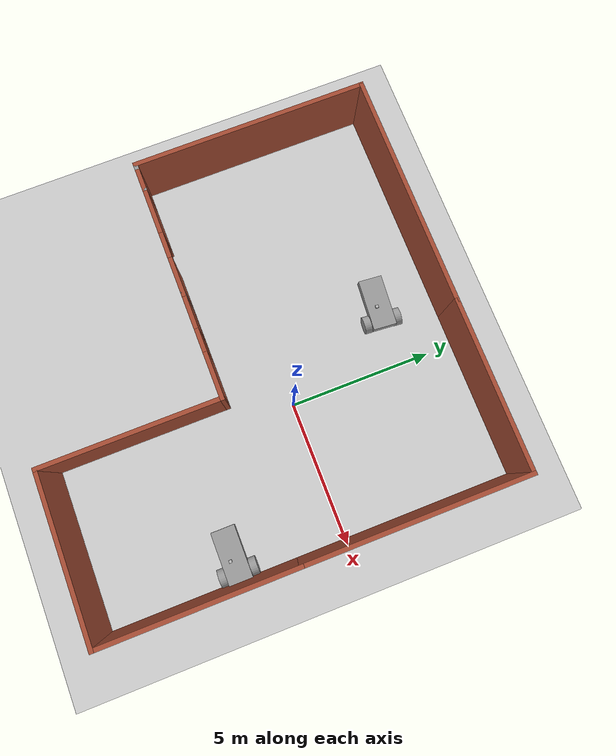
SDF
<sdf version="1.6">
 <world name="default">
  <light name="sun" type="directional">
   <pose>0 0 10 0 -0 0</pose>
   <diffuse>0.8 0.8 0.8 1</diffuse>
   <specular>0.2 0.2 0.2 1</specular>
   <attenuation>
    <range>1000</range>
    <constant>0.9</constant>
    <linear>0.01</linear>
    <quadratic>0.001</quadratic>
   </attenuation>
   <direction>-0.5 0.1 -0.9</direction>
  </light>
  <model name="ground_plane">
   <static>1</static>
   <link name="link">
    <collision name="collision">
     <geometry><plane><normal>0 0 1</normal><size>100 100</size></plane></geometry>
     <surface>
      <contact><collide_bitmask>65535</collide_bitmask></contact>
      <friction><ode><mu>100</mu><mu2>50</mu2></ode></friction>
     </surface>
    </collision>
    <visual name="visual">
     <cast_shadows>0</cast_shadows>
     <geometry><plane><normal>0 0 1</normal><size>100 100</size></plane></geometry>
     <material>
      <script><uri>file://media/materials/scripts/gazebo.material</uri><name>Gazebo/Grey</name></script>
     </material>
    </visual>
   </link>
  </model>
  <gravity>0 0 -9.8</gravity>
  <magnetic_field>6e-06 2.3e-05 -4.2e-05</magnetic_field>
  <atmosphere type="adiabatic"/>
  <physics name="default_physics" default="0" type="ode">
   <max_step_size>0.001</max_step_size>
   <real_time_factor>1</real_time_factor>
   <real_time_update_rate>1000</real_time_update_rate>
  </physics>
  <scene><ambient>0.4 0.4 0.4 1</ambient><background>0.7 0.7 0.7 1</background><shadows>1</shadows></scene>
  <audio><device>default</device></audio>
  <spherical_coordinates>
   <surface_model>EARTH_WGS84</surface_model>
   <latitude_deg>0</latitude_deg>
   <longitude_deg>0</longitude_deg>
   <elevation>0</elevation>
   <heading_deg>0</heading_deg>
  </spherical_coordinates>
  <model name="firstdemo">
   <pose>-2.129 -1.13538 0 0 -0 0</pose>
   <link name="Wall_14">
    <collision name="Wall_14_Collision">
     <geometry><box><size>8.25 0.15 2.5</size></box></geometry>
     <pose>0 0 1.25 0 -0 0</pose>
    </collision>
    <visual name="Wall_14_Visual">
     <pose>0 0 1.25 0 -0 0</pose>
     <geometry><box><size>8.25 0.15 2.5</size></box></geometry>
     <material>
      <script><uri>file://media/materials/scripts/gazebo.material</uri><name>Gazebo/Bricks</name></script>
      <ambient>0.996078 0.47451 0.0196078 1</ambient>
     </material>
     <meta><layer>0</layer></meta>
    </visual>
    <pose>-2.92516 7.11317 0 0 -0 0</pose>
   </link>
   <link name="Wall_15">
    <collision name="Wall_15_Collision">
     <geometry><box><size>6 0.15 2.5</size></box></geometry>
     <pose>0 0 1.25 0 -0 0</pose>
    </collision>
    <visual name="Wall_15_Visual">
     <pose>0 0 1.25 0 -0 0</pose>
     <geometry><box><size>6 0.15 2.5</size></box></geometry>
     <material>
      <script><uri>file://media/materials/scripts/gazebo.material</uri><name>Gazebo/Bricks</name></script>
      <ambient>0.996078 0.47451 0.0196078 1</ambient>
     </material>
     <meta><layer>0</layer></meta>
    </visual>
    <pose>4.04984 7.11317 0 0 -0 0</pose>
   </link>
   <link name="Wall_16">
    <collision name="Wall_16_Collision">
     <geometry><box><size>7.776 0.15 2.5</size></box></geometry>
     <pose>0 0 1.25 0 -0 0</pose>
    </collision>
    <visual name="Wall_16_Visual">
     <pose>0 0 1.25 0 -0 0</pose>
     <geometry><box><size>7.776 0.15 2.5</size></box></geometry>
     <material>
      <script><uri>file://media/materials/scripts/gazebo.material</uri><name>Gazebo/Bricks</name></script>
      <ambient>0.996078 0.47451 0.0196078 1</ambient>
     </material>
     <meta><layer>0</layer></meta>
    </visual>
    <pose>6.97484 3.30017 0 0 -0 -1.5708</pose>
   </link>
   <link name="Wall_17">
    <collision name="Wall_17_Collision">
     <geometry><box><size>6.75006 0.15 2.5</size></box></geometry>
     <pose>0 0 1.25 0 -0 0</pose>
    </collision>
    <visual name="Wall_17_Visual">
     <pose>0 0 1.25 0 -0 0</pose>
     <geometry><box><size>6.75006 0.15 2.5</size></box></geometry>
     <material>
      <script><uri>file://media/materials/scripts/gazebo.material</uri><name>Gazebo/Bricks</name></script>
      <ambient>0.996078 0.47451 0.0196078 1</ambient>
     </material>
     <meta><layer>0</layer></meta>
    </visual>
    <pose>6.97484 -3.81283 0 0 -0 -1.5708</pose>
   </link>
   <link name="Wall_18">
    <collision name="Wall_18_Collision">
     <geometry><box><size>5.75 0.15 2.5</size></box></geometry>
     <pose>0 0 1.25 0 -0 0</pose>
    </collision>
    <visual name="Wall_18_Visual">
     <pose>0 0 1.25 0 -0 0</pose>
     <geometry><box><size>5.75 0.15 2.5</size></box></geometry>
     <material>
      <script><uri>file://media/materials/scripts/gazebo.material</uri><name>Gazebo/Bricks</name></script>
      <ambient>0.996078 0.47451 0.0196078 1</ambient>
     </material>
     <meta><layer>0</layer></meta>
    </visual>
    <pose>4.17484 -7.09983 0 0 -0 3.13695</pose>
   </link>
   <link name="Wall_19">
    <collision name="Wall_19_Collision">
     <geometry><box><size>6.25 0.15 2.5</size></box></geometry>
     <pose>0 0 1.25 0 -0 0</pose>
    </collision>
    <visual name="Wall_19_Visual">
     <pose>0 0 1.25 0 -0 0</pose>
     <geometry><box><size>6.25 0.15 2.5</size></box></geometry>
     <material>
      <script><uri>file://media/materials/scripts/gazebo.material</uri><name>Gazebo/Bricks</name></script>
      <ambient>0.996078 0.47451 0.0196078 1</ambient>
     </material>
     <meta><layer>0</layer></meta>
    </visual>
    <pose>1.37484 -4.03683 0 0 -0 1.5708</pose>
   </link>
   <link name="Wall_20">
    <pose>-0.425158 -0.986827 0 0 -0 3.14159</pose>
    <visual name="Wall_20_Visual_0">
     <pose>-1.04992 0 1.25 0 -0 0</pose>
     <geometry><box><size>1.65016 0.15 2.5</size></box></geometry>
     <material>
      <script><uri>file://media/materials/scripts/gazebo.material</uri><name>Gazebo/Bricks</name></script>
      <ambient>0.996078 0.47451 0.0196078 1</ambient>
     </material>
     <meta><layer>0</layer></meta>
    </visual>
    <collision name="Wall_20_Collision_0">
     <geometry><box><size>1.65016 0.15 2.5</size></box></geometry>
     <pose>-1.04992 0 1.25 0 -0 0</pose>
    </collision>
    <visual name="Wall_20_Visual_1">
     <pose>0.825082 0 0.25 0 -0 0</pose>
     <geometry><box><size>2.09984 0.15 0.5</size></box></geometry>
     <material>
      <script><uri>file://media/materials/scripts/gazebo.material</uri><name>Gazebo/Bricks</name></script>
      <ambient>0.996078 0.47451 0.0196078 1</ambient>
     </material>
     <meta><layer>0</layer></meta>
    </visual>
    <collision name="Wall_20_Collision_1">
     <geometry><box><size>2.09984 0.15 0.5</size></box></geometry>
     <pose>0.825082 0 0.25 0 -0 0</pose>
    </collision>
    <visual name="Wall_20_Visual_2">
     <pose>1.22508 0 1.5 0 -0 0</pose>
     <geometry><box><size>1.29984 0.15 2</size></box></geometry>
     <material>
      <script><uri>file://media/materials/scripts/gazebo.material</uri><name>Gazebo/Bricks</name></script>
      <ambient>0.996078 0.47451 0.0196078 1</ambient>
     </material>
     <meta><layer>0</layer></meta>
    </visual>
    <collision name="Wall_20_Collision_2">
     <geometry><box><size>1.29984 0.15 2</size></box></geometry>
     <pose>1.22508 0 1.5 0 -0 0</pose>
    </collision>
    <visual name="Wall_20_Visual_3">
     <pose>0.175164 0 1.9 0 -0 0</pose>
     <geometry><box><size>0.8 0.15 1.2</size></box></geometry>
     <material>
      <script><uri>file://media/materials/scripts/gazebo.material</uri><name>Gazebo/Bricks</name></script>
      <ambient>0.996078 0.47451 0.0196078 1</ambient>
     </material>
     <meta><layer>0</layer></meta>
    </visual>
    <collision name="Wall_20_Collision_3">
     <geometry><box><size>0.8 0.15 1.2</size></box></geometry>
     <pose>0.175164 0 1.9 0 -0 0</pose>
    </collision>
   </link>
   <link name="Wall_21">
    <collision name="Wall_21_Collision">
     <geometry><box><size>0.16 0.15 2.5</size></box></geometry>
     <pose>0 0 1.25 0 -0 0</pose>
    </collision>
    <visual name="Wall_21_Visual">
     <pose>0 0 1.25 0 -0 0</pose>
     <geometry><box><size>0.16 0.15 2.5</size></box></geometry>
     <material>
      <script><uri>file://media/materials/scripts/gazebo.material</uri><name>Gazebo/Grey</name></script>
      <ambient>1 1 1 1</ambient>
     </material>
     <meta><layer>0</layer></meta>
    </visual>
    <pose>-2.22017 -0.986856 0 0 -0 -0.005994</pose>
   </link>
   <link name="Wall_22">
    <collision name="Wall_22_Collision">
     <geometry><box><size>0.16 0.15 2.5</size></box></geometry>
     <pose>0 0 1.25 0 -0 0</pose>
    </collision>
    <visual name="Wall_22_Visual">
     <pose>0 0 1.25 0 -0 0</pose>
     <geometry><box><size>0.16 0.15 2.5</size></box></geometry>
     <material>
      <script><uri>file://media/materials/scripts/gazebo.material</uri><name>Gazebo/Grey</name></script>
      <ambient>1 1 1 1</ambient>
     </material>
     <meta><layer>0</layer></meta>
    </visual>
    <pose>-2.21017 -0.986856 0 0 -0 0.00597</pose>
   </link>
   <link name="Wall_23">
    <collision name="Wall_23_Collision">
     <geometry><box><size>0.16 0.15 2.5</size></box></geometry>
     <pose>0 0 1.25 0 -0 0</pose>
    </collision>
    <visual name="Wall_23_Visual">
     <pose>0 0 1.25 0 -0 0</pose>
     <geometry><box><size>0.16 0.15 2.5</size></box></geometry>
     <material>
      <script><uri>file://media/materials/scripts/gazebo.material</uri><name>Gazebo/Grey</name></script>
      <ambient>1 1 1 1</ambient>
     </material>
     <meta><layer>0</layer></meta>
    </visual>
    <pose>-2.21017 -0.986856 0 0 -0 -3.13562</pose>
   </link>
   <link name="Wall_28">
    <pose>-4.13016 -0.986827 0 0 -0 3.14159</pose>
    <visual name="Wall_28_Visual_0">
     <pose>-1.30311 0 1.25 0 -0 0</pose>
     <geometry><box><size>1.39377 0.15 2.5</size></box></geometry>
     <material>
      <script><uri>file://media/materials/scripts/gazebo.material</uri><name>Gazebo/Bricks</name></script>
      <ambient>0.996078 0.47451 0.0196078 1</ambient>
     </material>
     <meta><layer>0</layer></meta>
    </visual>
    <collision name="Wall_28_Collision_0">
     <geometry><box><size>1.39377 0.15 2.5</size></box></geometry>
     <pose>-1.30311 0 1.25 0 -0 0</pose>
    </collision>
    <visual name="Wall_28_Visual_1">
     <pose>1.14689 0 1.25 0 -0 0</pose>
     <geometry><box><size>1.70623 0.15 2.5</size></box></geometry>
     <material>
      <script><uri>file://media/materials/scripts/gazebo.material</uri><name>Gazebo/Bricks</name></script>
      <ambient>0.996078 0.47451 0.0196078 1</ambient>
     </material>
     <meta><layer>0</layer></meta>
    </visual>
    <collision name="Wall_28_Collision_1">
     <geometry><box><size>1.70623 0.15 2.5</size></box></geometry>
     <pose>1.14689 0 1.25 0 -0 0</pose>
    </collision>
    <visual name="Wall_28_Visual_2">
     <pose>-0.156229 0 2.25 0 -0 0</pose>
     <geometry><box><size>0.9 0.15 0.5</size></box></geometry>
     <material>
      <script><uri>file://media/materials/scripts/gazebo.material</uri><name>Gazebo/Bricks</name></script>
      <ambient>0.996078 0.47451 0.0196078 1</ambient>
     </material>
     <meta><layer>0</layer></meta>
    </visual>
    <collision name="Wall_28_Collision_2">
     <geometry><box><size>0.9 0.15 0.5</size></box></geometry>
     <pose>-0.156229 0 2.25 0 -0 0</pose>
    </collision>
   </link>
   <link name="Wall_29">
    <collision name="Wall_29_Collision">
     <geometry><box><size>0.15 0.15 2.5</size></box></geometry>
     <pose>0 0 1.25 0 -0 0</pose>
    </collision>
    <visual name="Wall_29_Visual">
     <pose>0 0 1.25 0 -0 0</pose>
     <geometry><box><size>0.15 0.15 2.5</size></box></geometry>
     <material>
      <script><uri>file://media/materials/scripts/gazebo.material</uri><name>Gazebo/Grey</name></script>
      <ambient>1 1 1 1</ambient>
     </material>
     <meta><layer>0</layer></meta>
    </visual>
    <pose>-6.05516 -0.986827 0 0 -0 0</pose>
   </link>
   <link name="Wall_31">
    <collision name="Wall_31_Collision">
     <geometry><box><size>0.947696 0.15 2.5</size></box></geometry>
     <pose>0 0 1.25 0 -0 0</pose>
    </collision>
    <visual name="Wall_31_Visual">
     <pose>0 0 1.25 0 -0 0</pose>
     <geometry><box><size>0.947696 0.15 2.5</size></box></geometry>
     <material>
      <script><uri>file://media/materials/scripts/gazebo.material</uri><name>Gazebo/Bricks</name></script>
      <ambient>0.996078 0.47451 0.0196078 1</ambient>
     </material>
     <meta><layer>0</layer></meta>
    </visual>
    <pose>-6.45416 -0.986827 0 0 -0 3.14159</pose>
   </link>
   <link name="Wall_32">
    <collision name="Wall_32_Collision">
     <geometry><box><size>0.15 0.15 2.5</size></box></geometry>
     <pose>0 0 1.25 0 -0 0</pose>
    </collision>
    <visual name="Wall_32_Visual">
     <pose>0 0 1.25 0 -0 0</pose>
     <geometry><box><size>0.15 0.15 2.5</size></box></geometry>
     <material>
      <script><uri>file://media/materials/scripts/gazebo.material</uri><name>Gazebo/Grey</name></script>
      <ambient>1 1 1 1</ambient>
     </material>
     <meta><layer>0</layer></meta>
    </visual>
    <pose>-6.85316 -0.986827 0 0 -0 0</pose>
   </link>
   <link name="Wall_36">
    <collision name="Wall_36_Collision">
     <geometry><box><size>8.25 0.15 2.5</size></box></geometry>
     <pose>0 0 1.25 0 -0 0</pose>
    </collision>
    <visual name="Wall_36_Visual">
     <pose>0 0 1.25 0 -0 0</pose>
     <geometry><box><size>8.25 0.15 2.5</size></box></geometry>
     <material>
      <script><uri>file://media/materials/scripts/gazebo.material</uri><name>Gazebo/Bricks</name></script>
      <ambient>0.996078 0.47451 0.0196078 1</ambient>
     </material>
     <meta><layer>0</layer></meta>
    </visual>
    <pose>-6.97516 3.06317 0 0 -0 -1.5708</pose>
   </link>
   <link name="Wall_37">
    <collision name="Wall_37_Collision">
     <geometry><box><size>0.15 0.15 2.5</size></box></geometry>
     <pose>0 0 1.25 0 -0 0</pose>
    </collision>
    <visual name="Wall_37_Visual">
     <pose>0 0 1.25 0 -0 0</pose>
     <geometry><box><size>0.15 0.15 2.5</size></box></geometry>
     <material>
      <script><uri>file://media/materials/scripts/gazebo.material</uri><name>Gazebo/Grey</name></script>
      <ambient>1 1 1 1</ambient>
     </material>
     <meta><layer>0</layer></meta>
    </visual>
    <pose>-6.97516 -0.986827 0 0 -0 0</pose>
   </link>
   <static>1</static>
  </model>
  <model name="first_robot">
   <link name="link_0">
    <inertial>
     <mass>0.505177</mass>
     <inertia>
      <ixx>0.0333345</ixx>
      <ixy>0</ixy>
      <ixz>0</ixz>
      <iyy>0.138072</iyy>
      <iyz>0</iyz>
      <izz>0.161276</izz>
     </inertia>
     <pose>0 0 0.4 0 -0 0</pose>
    </inertial>
    <pose>-0.130088 0.018348 0.092404 0 -0 0</pose>
    <visual name="visual">
     <geometry><box><size>1.77748 0.819461 0.346863</size></box></geometry>
     <material>
      <lighting>1</lighting>
      <script><uri>file://media/materials/scripts/gazebo.material</uri><name>Gazebo/Grey</name></script>
      <shader type="vertex"><normal_map>__default__</normal_map></shader>
      <ambient>0.3 0.3 0.3 1</ambient>
      <diffuse>0.7 0.7 0.7 1</diffuse>
      <specular>0.01 0.01 0.01 1</specular>
      <emissive>0 0 0 1</emissive>
     </material>
    </visual>
    <collision name="collision">
     <geometry><box><size>1.77748 0.819461 0.346863</size></box></geometry>
     <surface>
      <friction>
       <ode><mu>1</mu><mu2>1</mu2><fdir1>0 0 0</fdir1><slip1>0</slip1><slip2>0</slip2></ode>
       <torsional>
        <coefficient>1</coefficient>
        <patch_radius>0</patch_radius>
        <surface_radius>0</surface_radius>
        <use_patch_radius>1</use_patch_radius>
        <ode><slip>0</slip></ode>
       </torsional>
      </friction>
      <bounce><restitution_coefficient>0</restitution_coefficient><threshold>1e+06</threshold></bounce>
      <contact>
       <collide_without_contact>0</collide_without_contact>
       <collide_without_contact_bitmask>1</collide_without_contact_bitmask>
       <collide_bitmask>1</collide_bitmask>
       <ode>
        <soft_cfm>0</soft_cfm>
        <soft_erp>0.2</soft_erp>
        <kp>1e+13</kp>
        <kd>1</kd>
        <max_vel>0.01</max_vel>
        <min_depth>0</min_depth>
       </ode>
       <bullet>
        <split_impulse>1</split_impulse>
        <split_impulse_penetration_threshold>-0.01</split_impulse_penetration_threshold>
        <soft_cfm>0</soft_cfm>
        <soft_erp>0.2</soft_erp>
        <kp>1e+13</kp>
        <kd>1</kd>
       </bullet>
      </contact>
     </surface>
    </collision>
   </link>
   <link name="link_1">
    <inertial>
     <mass>1</mass>
     <inertia><ixx>0.145833</ixx><ixy>0</ixy><ixz>0</ixz><iyy>0.145833</iyy><iyz>0</iyz><izz>0.125</izz></inertia>
    </inertial>
    <pose>0.458652 -0.516412 -0.107596 1.5707 -0 0</pose>
    <visual name="visual">
     <geometry><cylinder><radius>0.3</radius><length>0.25</length></cylinder></geometry>
     <material>
      <lighting>1</lighting>
      <script><uri>file://media/materials/scripts/gazebo.material</uri><name>Gazebo/Grey</name></script>
      <shader type="vertex"><normal_map>__default__</normal_map></shader>
      <ambient>0.3 0.3 0.3 1</ambient>
      <diffuse>0.7 0.7 0.7 1</diffuse>
      <specular>0.01 0.01 0.01 1</specular>
      <emissive>0 0 0 1</emissive>
     </material>
    </visual>
    <collision name="collision">
     <geometry><cylinder><radius>0.3</radius><length>0.25</length></cylinder></geometry>
     <surface>
      <friction>
       <ode><mu>1</mu><mu2>1</mu2><fdir1>0 0 0</fdir1><slip1>0</slip1><slip2>0</slip2></ode>
       <torsional>
        <coefficient>1</coefficient>
        <patch_radius>0</patch_radius>
        <surface_radius>0</surface_radius>
        <use_patch_radius>1</use_patch_radius>
        <ode><slip>0</slip></ode>
       </torsional>
      </friction>
      <bounce><restitution_coefficient>0</restitution_coefficient><threshold>1e+06</threshold></bounce>
      <contact>
       <collide_without_contact>0</collide_without_contact>
       <collide_without_contact_bitmask>1</collide_without_contact_bitmask>
       <collide_bitmask>1</collide_bitmask>
       <ode>
        <soft_cfm>0</soft_cfm>
        <soft_erp>0.2</soft_erp>
        <kp>1e+13</kp>
        <kd>1</kd>
        <max_vel>0.01</max_vel>
        <min_depth>0</min_depth>
       </ode>
       <bullet>
        <split_impulse>1</split_impulse>
        <split_impulse_penetration_threshold>-0.01</split_impulse_penetration_threshold>
        <soft_cfm>0</soft_cfm>
        <soft_erp>0.2</soft_erp>
        <kp>1e+13</kp>
        <kd>1</kd>
       </bullet>
      </contact>
     </surface>
    </collision>
   </link>
   <link name="link_1_clone">
    <inertial>
     <mass>1</mass>
     <inertia><ixx>0.145833</ixx><ixy>0</ixy><ixz>0</ixz><iyy>0.145833</iyy><iyz>0</iyz><izz>0.125</izz></inertia>
    </inertial>
    <pose>0.458652 0.553107 -0.107596 1.5707 -0 0</pose>
    <visual name="visual">
     <geometry><cylinder><radius>0.3</radius><length>0.25</length></cylinder></geometry>
     <material>
      <lighting>1</lighting>
      <script><uri>file://media/materials/scripts/gazebo.material</uri><name>Gazebo/Grey</name></script>
      <shader type="vertex"><normal_map>__default__</normal_map></shader>
      <ambient>0.3 0.3 0.3 1</ambient>
      <diffuse>0.7 0.7 0.7 1</diffuse>
      <specular>0.01 0.01 0.01 1</specular>
      <emissive>0 0 0 1</emissive>
     </material>
    </visual>
    <collision name="collision">
     <geometry><cylinder><radius>0.3</radius><length>0.25</length></cylinder></geometry>
     <surface>
      <friction>
       <ode><mu>1</mu><mu2>1</mu2><fdir1>0 0 0</fdir1><slip1>0</slip1><slip2>0</slip2></ode>
       <torsional>
        <coefficient>1</coefficient>
        <patch_radius>0</patch_radius>
        <surface_radius>0</surface_radius>
        <use_patch_radius>1</use_patch_radius>
        <ode><slip>0</slip></ode>
       </torsional>
      </friction>
      <bounce><restitution_coefficient>0</restitution_coefficient><threshold>1e+06</threshold></bounce>
      <contact>
       <collide_without_contact>0</collide_without_contact>
       <collide_without_contact_bitmask>1</collide_without_contact_bitmask>
       <collide_bitmask>1</collide_bitmask>
       <ode>
        <soft_cfm>0</soft_cfm>
        <soft_erp>0.2</soft_erp>
        <kp>1e+13</kp>
        <kd>1</kd>
        <max_vel>0.01</max_vel>
        <min_depth>0</min_depth>
       </ode>
       <bullet>
        <split_impulse>1</split_impulse>
        <split_impulse_penetration_threshold>-0.01</split_impulse_penetration_threshold>
        <soft_cfm>0</soft_cfm>
        <soft_erp>0.2</soft_erp>
        <kp>1e+13</kp>
        <kd>1</kd>
       </bullet>
      </contact>
     </surface>
    </collision>
   </link>
   <link name="link_2">
    <inertial>
     <mass>1</mass>
     <inertia><ixx>0.1</ixx><ixy>0</ixy><ixz>0</ixz><iyy>0.1</iyy><iyz>0</iyz><izz>0.1</izz></inertia>
    </inertial>
    <pose>-0.818828 0.018348 -0.207596 0 -0 0</pose>
    <visual name="visual">
     <geometry><sphere><radius>0.2</radius></sphere></geometry>
     <material>
      <lighting>1</lighting>
      <script><uri>file://media/materials/scripts/gazebo.material</uri><name>Gazebo/Grey</name></script>
      <shader type="vertex"><normal_map>__default__</normal_map></shader>
      <ambient>0.3 0.3 0.3 1</ambient>
      <diffuse>0.7 0.7 0.7 1</diffuse>
      <specular>0.01 0.01 0.01 1</specular>
      <emissive>0 0 0 1</emissive>
     </material>
    </visual>
    <collision name="collision">
     <geometry><sphere><radius>0.2</radius></sphere></geometry>
     <surface>
      <friction>
       <ode><mu>1</mu><mu2>1</mu2><fdir1>0 0 0</fdir1><slip1>0</slip1><slip2>0</slip2></ode>
       <torsional>
        <coefficient>1</coefficient>
        <patch_radius>0</patch_radius>
        <surface_radius>0</surface_radius>
        <use_patch_radius>1</use_patch_radius>
        <ode><slip>0</slip></ode>
       </torsional>
      </friction>
      <bounce><restitution_coefficient>0</restitution_coefficient><threshold>1e+06</threshold></bounce>
      <contact>
       <collide_without_contact>0</collide_without_contact>
       <collide_without_contact_bitmask>1</collide_without_contact_bitmask>
       <collide_bitmask>1</collide_bitmask>
       <ode>
        <soft_cfm>0</soft_cfm>
        <soft_erp>0.2</soft_erp>
        <kp>1e+13</kp>
        <kd>1</kd>
        <max_vel>0.01</max_vel>
        <min_depth>0</min_depth>
       </ode>
       <bullet>
        <split_impulse>1</split_impulse>
        <split_impulse_penetration_threshold>-0.01</split_impulse_penetration_threshold>
        <soft_cfm>0</soft_cfm>
        <soft_erp>0.2</soft_erp>
        <kp>1e+13</kp>
        <kd>1</kd>
       </bullet>
      </contact>
     </surface>
    </collision>
   </link>
   <model name="depth_camera">
    <link name="link">
     <pose>0 0 0.05 0 -0 0</pose>
     <inertial>
      <mass>0.1</mass>
      <inertia>
       <ixx>0.000166667</ixx>
       <iyy>0.000166667</iyy>
       <izz>0.000166667</izz>
       <ixy>0</ixy>
       <ixz>0</ixz>
       <iyz>0</iyz>
      </inertia>
     </inertial>
     <collision name="collision"><geometry><box><size>0.1 0.1 0.1</size></box></geometry></collision>
     <visual name="visual"><geometry><box><size>0.1 0.1 0.1</size></box></geometry></visual>
     <sensor name="camera" type="depth">
      <camera name="__default__">
       <horizontal_fov>1.047</horizontal_fov>
       <image><width>320</width><height>240</height></image>
       <clip><near>0.1</near><far>100</far></clip>
      </camera>
      <always_on>1</always_on>
      <update_rate>30</update_rate>
      <visualize>1</visualize>
     </sensor>
    </link>
    <pose>0.031614 -0.073392 0.330386 0 -0 0</pose>
   </model>
   <joint name="link_0_JOINT_2" type="revolute">
    <parent>link_0</parent>
    <child>link_1_clone</child>
    <axis>
     <xyz>0 0 1</xyz>
     <use_parent_model_frame>0</use_parent_model_frame>
     <limit>
      <lower>-1.79769e+308</lower>
      <upper>1.79769e+308</upper>
      <effort>-1</effort>
      <velocity>-1</velocity>
     </limit>
     <dynamics>
      <spring_reference>0</spring_reference>
      <spring_stiffness>0</spring_stiffness>
      <damping>0</damping>
     </dynamics>
    </axis>
    <physics>
     <ode><limit><cfm>0</cfm><erp>0.2</erp></limit><suspension><cfm>0</cfm><erp>0.2</erp></suspension></ode>
    </physics>
   </joint>
   <joint name="link_0_JOINT_3" type="revolute">
    <parent>link_0</parent>
    <child>link_1</child>
    <axis>
     <xyz>0 0 1</xyz>
     <use_parent_model_frame>0</use_parent_model_frame>
     <limit>
      <lower>-1.79769e+308</lower>
      <upper>1.79769e+308</upper>
      <effort>-1</effort>
      <velocity>-1</velocity>
     </limit>
     <dynamics>
      <spring_reference>0</spring_reference>
      <spring_stiffness>0</spring_stiffness>
      <damping>0</damping>
     </dynamics>
    </axis>
    <physics>
     <ode><limit><cfm>0</cfm><erp>0.2</erp></limit><suspension><cfm>0</cfm><erp>0.2</erp></suspension></ode>
    </physics>
   </joint>
   <joint name="link_0_JOINT_4" type="ball">
    <parent>link_0</parent>
    <child>link_2</child>
    <physics>
     <ode><limit><cfm>0</cfm><erp>0.2</erp></limit><suspension><cfm>0</cfm><erp>0.2</erp></suspension></ode>
    </physics>
   </joint>
   <joint name="link_0_JOINT_8" type="fixed">
    <parent>link_0</parent>
    <child>depth_camera::link</child>
    <physics>
     <ode><limit><cfm>0</cfm><erp>0.2</erp></limit><suspension><cfm>0</cfm><erp>0.2</erp></suspension></ode>
    </physics>
   </joint>
   <static>0</static>
   <plugin name="follower" filename="libFollowerPlugin.so"/>
   <pose>4.01219 -3.6754 0.407604 -2e-06 -1.2e-05 -1.1e-05</pose>
  </model>
  <model name="first_robot_0">
   <link name="link_0">
    <inertial>
     <mass>0.505177</mass>
     <inertia>
      <ixx>0.0333345</ixx>
      <ixy>0</ixy>
      <ixz>0</ixz>
      <iyy>0.138072</iyy>
      <iyz>0</iyz>
      <izz>0.161276</izz>
     </inertia>
     <pose>0 0 0.4 0 -0 0</pose>
    </inertial>
    <pose>-0.130088 0.018348 0.092404 0 -0 0</pose>
    <visual name="visual">
     <geometry><box><size>1.77748 0.819461 0.346863</size></box></geometry>
     <material>
      <lighting>1</lighting>
      <script><uri>file://media/materials/scripts/gazebo.material</uri><name>Gazebo/Grey</name></script>
      <shader type="vertex"><normal_map>__default__</normal_map></shader>
      <ambient>0.3 0.3 0.3 1</ambient>
      <diffuse>0.7 0.7 0.7 1</diffuse>
      <specular>0.01 0.01 0.01 1</specular>
      <emissive>0 0 0 1</emissive>
     </material>
    </visual>
    <collision name="collision">
     <geometry><box><size>1.77748 0.819461 0.346863</size></box></geometry>
     <surface>
      <friction>
       <ode><mu>1</mu><mu2>1</mu2><fdir1>0 0 0</fdir1><slip1>0</slip1><slip2>0</slip2></ode>
       <torsional>
        <coefficient>1</coefficient>
        <patch_radius>0</patch_radius>
        <surface_radius>0</surface_radius>
        <use_patch_radius>1</use_patch_radius>
        <ode><slip>0</slip></ode>
       </torsional>
      </friction>
      <bounce><restitution_coefficient>0</restitution_coefficient><threshold>1e+06</threshold></bounce>
      <contact>
       <collide_without_contact>0</collide_without_contact>
       <collide_without_contact_bitmask>1</collide_without_contact_bitmask>
       <collide_bitmask>1</collide_bitmask>
       <ode>
        <soft_cfm>0</soft_cfm>
        <soft_erp>0.2</soft_erp>
        <kp>1e+13</kp>
        <kd>1</kd>
        <max_vel>0.01</max_vel>
        <min_depth>0</min_depth>
       </ode>
       <bullet>
        <split_impulse>1</split_impulse>
        <split_impulse_penetration_threshold>-0.01</split_impulse_penetration_threshold>
        <soft_cfm>0</soft_cfm>
        <soft_erp>0.2</soft_erp>
        <kp>1e+13</kp>
        <kd>1</kd>
       </bullet>
      </contact>
     </surface>
    </collision>
   </link>
   <link name="link_1">
    <inertial>
     <mass>1</mass>
     <inertia><ixx>0.145833</ixx><ixy>0</ixy><ixz>0</ixz><iyy>0.145833</iyy><iyz>0</iyz><izz>0.125</izz></inertia>
    </inertial>
    <pose>0.458652 -0.516412 -0.107596 1.5707 -0 0</pose>
    <visual name="visual">
     <geometry><cylinder><radius>0.3</radius><length>0.25</length></cylinder></geometry>
     <material>
      <lighting>1</lighting>
      <script><uri>file://media/materials/scripts/gazebo.material</uri><name>Gazebo/Grey</name></script>
      <shader type="vertex"><normal_map>__default__</normal_map></shader>
      <ambient>0.3 0.3 0.3 1</ambient>
      <diffuse>0.7 0.7 0.7 1</diffuse>
      <specular>0.01 0.01 0.01 1</specular>
      <emissive>0 0 0 1</emissive>
     </material>
    </visual>
    <collision name="collision">
     <geometry><cylinder><radius>0.3</radius><length>0.25</length></cylinder></geometry>
     <surface>
      <friction>
       <ode><mu>1</mu><mu2>1</mu2><fdir1>0 0 0</fdir1><slip1>0</slip1><slip2>0</slip2></ode>
       <torsional>
        <coefficient>1</coefficient>
        <patch_radius>0</patch_radius>
        <surface_radius>0</surface_radius>
        <use_patch_radius>1</use_patch_radius>
        <ode><slip>0</slip></ode>
       </torsional>
      </friction>
      <bounce><restitution_coefficient>0</restitution_coefficient><threshold>1e+06</threshold></bounce>
      <contact>
       <collide_without_contact>0</collide_without_contact>
       <collide_without_contact_bitmask>1</collide_without_contact_bitmask>
       <collide_bitmask>1</collide_bitmask>
       <ode>
        <soft_cfm>0</soft_cfm>
        <soft_erp>0.2</soft_erp>
        <kp>1e+13</kp>
        <kd>1</kd>
        <max_vel>0.01</max_vel>
        <min_depth>0</min_depth>
       </ode>
       <bullet>
        <split_impulse>1</split_impulse>
        <split_impulse_penetration_threshold>-0.01</split_impulse_penetration_threshold>
        <soft_cfm>0</soft_cfm>
        <soft_erp>0.2</soft_erp>
        <kp>1e+13</kp>
        <kd>1</kd>
       </bullet>
      </contact>
     </surface>
    </collision>
   </link>
   <link name="link_1_clone">
    <inertial>
     <mass>1</mass>
     <inertia><ixx>0.145833</ixx><ixy>0</ixy><ixz>0</ixz><iyy>0.145833</iyy><iyz>0</iyz><izz>0.125</izz></inertia>
    </inertial>
    <pose>0.458652 0.553107 -0.107596 1.5707 -0 0</pose>
    <visual name="visual">
     <geometry><cylinder><radius>0.3</radius><length>0.25</length></cylinder></geometry>
     <material>
      <lighting>1</lighting>
      <script><uri>file://media/materials/scripts/gazebo.material</uri><name>Gazebo/Grey</name></script>
      <shader type="vertex"><normal_map>__default__</normal_map></shader>
      <ambient>0.3 0.3 0.3 1</ambient>
      <diffuse>0.7 0.7 0.7 1</diffuse>
      <specular>0.01 0.01 0.01 1</specular>
      <emissive>0 0 0 1</emissive>
     </material>
    </visual>
    <collision name="collision">
     <geometry><cylinder><radius>0.3</radius><length>0.25</length></cylinder></geometry>
     <surface>
      <friction>
       <ode><mu>1</mu><mu2>1</mu2><fdir1>0 0 0</fdir1><slip1>0</slip1><slip2>0</slip2></ode>
       <torsional>
        <coefficient>1</coefficient>
        <patch_radius>0</patch_radius>
        <surface_radius>0</surface_radius>
        <use_patch_radius>1</use_patch_radius>
        <ode><slip>0</slip></ode>
       </torsional>
      </friction>
      <bounce><restitution_coefficient>0</restitution_coefficient><threshold>1e+06</threshold></bounce>
      <contact>
       <collide_without_contact>0</collide_without_contact>
       <collide_without_contact_bitmask>1</collide_without_contact_bitmask>
       <collide_bitmask>1</collide_bitmask>
       <ode>
        <soft_cfm>0</soft_cfm>
        <soft_erp>0.2</soft_erp>
        <kp>1e+13</kp>
        <kd>1</kd>
        <max_vel>0.01</max_vel>
        <min_depth>0</min_depth>
       </ode>
       <bullet>
        <split_impulse>1</split_impulse>
        <split_impulse_penetration_threshold>-0.01</split_impulse_penetration_threshold>
        <soft_cfm>0</soft_cfm>
        <soft_erp>0.2</soft_erp>
        <kp>1e+13</kp>
        <kd>1</kd>
       </bullet>
      </contact>
     </surface>
    </collision>
   </link>
   <link name="link_2">
    <inertial>
     <mass>1</mass>
     <inertia><ixx>0.1</ixx><ixy>0</ixy><ixz>0</ixz><iyy>0.1</iyy><iyz>0</iyz><izz>0.1</izz></inertia>
    </inertial>
    <pose>-0.818828 0.018348 -0.207596 0 -0 0</pose>
    <visual name="visual">
     <geometry><sphere><radius>0.2</radius></sphere></geometry>
     <material>
      <lighting>1</lighting>
      <script><uri>file://media/materials/scripts/gazebo.material</uri><name>Gazebo/Grey</name></script>
      <shader type="vertex"><normal_map>__default__</normal_map></shader>
      <ambient>0.3 0.3 0.3 1</ambient>
      <diffuse>0.7 0.7 0.7 1</diffuse>
      <specular>0.01 0.01 0.01 1</specular>
      <emissive>0 0 0 1</emissive>
     </material>
    </visual>
    <collision name="collision">
     <geometry><sphere><radius>0.2</radius></sphere></geometry>
     <surface>
      <friction>
       <ode><mu>1</mu><mu2>1</mu2><fdir1>0 0 0</fdir1><slip1>0</slip1><slip2>0</slip2></ode>
       <torsional>
        <coefficient>1</coefficient>
        <patch_radius>0</patch_radius>
        <surface_radius>0</surface_radius>
        <use_patch_radius>1</use_patch_radius>
        <ode><slip>0</slip></ode>
       </torsional>
      </friction>
      <bounce><restitution_coefficient>0</restitution_coefficient><threshold>1e+06</threshold></bounce>
      <contact>
       <collide_without_contact>0</collide_without_contact>
       <collide_without_contact_bitmask>1</collide_without_contact_bitmask>
       <collide_bitmask>1</collide_bitmask>
       <ode>
        <soft_cfm>0</soft_cfm>
        <soft_erp>0.2</soft_erp>
        <kp>1e+13</kp>
        <kd>1</kd>
        <max_vel>0.01</max_vel>
        <min_depth>0</min_depth>
       </ode>
       <bullet>
        <split_impulse>1</split_impulse>
        <split_impulse_penetration_threshold>-0.01</split_impulse_penetration_threshold>
        <soft_cfm>0</soft_cfm>
        <soft_erp>0.2</soft_erp>
        <kp>1e+13</kp>
        <kd>1</kd>
       </bullet>
      </contact>
     </surface>
    </collision>
   </link>
   <model name="depth_camera">
    <link name="link">
     <pose>0 0 0.05 0 -0 0</pose>
     <inertial>
      <mass>0.1</mass>
      <inertia>
       <ixx>0.000166667</ixx>
       <iyy>0.000166667</iyy>
       <izz>0.000166667</izz>
       <ixy>0</ixy>
       <ixz>0</ixz>
       <iyz>0</iyz>
      </inertia>
     </inertial>
     <collision name="collision"><geometry><box><size>0.1 0.1 0.1</size></box></geometry></collision>
     <visual name="visual"><geometry><box><size>0.1 0.1 0.1</size></box></geometry></visual>
     <sensor name="camera" type="depth">
      <camera name="__default__">
       <horizontal_fov>1.047</horizontal_fov>
       <image><width>320</width><height>240</height></image>
       <clip><near>0.1</near><far>100</far></clip>
      </camera>
      <always_on>1</always_on>
      <update_rate>30</update_rate>
      <visualize>1</visualize>
     </sensor>
    </link>
    <pose>0.031614 -0.073392 0.330386 0 -0 0</pose>
   </model>
   <joint name="link_0_JOINT_2" type="revolute">
    <parent>link_0</parent>
    <child>link_1_clone</child>
    <axis>
     <xyz>0 0 1</xyz>
     <use_parent_model_frame>0</use_parent_model_frame>
     <limit>
      <lower>-1.79769e+308</lower>
      <upper>1.79769e+308</upper>
      <effort>-1</effort>
      <velocity>-1</velocity>
     </limit>
     <dynamics>
      <spring_reference>0</spring_reference>
      <spring_stiffness>0</spring_stiffness>
      <damping>0</damping>
     </dynamics>
    </axis>
    <physics>
     <ode><limit><cfm>0</cfm><erp>0.2</erp></limit><suspension><cfm>0</cfm><erp>0.2</erp></suspension></ode>
    </physics>
   </joint>
   <joint name="link_0_JOINT_3" type="revolute">
    <parent>link_0</parent>
    <child>link_1</child>
    <axis>
     <xyz>0 0 1</xyz>
     <use_parent_model_frame>0</use_parent_model_frame>
     <limit>
      <lower>-1.79769e+308</lower>
      <upper>1.79769e+308</upper>
      <effort>-1</effort>
      <velocity>-1</velocity>
     </limit>
     <dynamics>
      <spring_reference>0</spring_reference>
      <spring_stiffness>0</spring_stiffness>
      <damping>0</damping>
     </dynamics>
    </axis>
    <physics>
     <ode><limit><cfm>0</cfm><erp>0.2</erp></limit><suspension><cfm>0</cfm><erp>0.2</erp></suspension></ode>
    </physics>
   </joint>
   <joint name="link_0_JOINT_4" type="ball">
    <parent>link_0</parent>
    <child>link_2</child>
    <physics>
     <ode><limit><cfm>0</cfm><erp>0.2</erp></limit><suspension><cfm>0</cfm><erp>0.2</erp></suspension></ode>
    </physics>
   </joint>
   <joint name="link_0_JOINT_8" type="fixed">
    <parent>link_0</parent>
    <child>depth_camera::link</child>
    <physics>
     <ode><limit><cfm>0</cfm><erp>0.2</erp></limit><suspension><cfm>0</cfm><erp>0.2</erp></suspension></ode>
    </physics>
   </joint>
   <static>0</static>
   <plugin name="follower" filename="libFollowerPlugin.so"/>
   <pose>-2.08642 3.94057 0.407602 -1e-06 -1.3e-05 -0.082767</pose>
  </model>
  <model name="firstdemo_1"><static>0</static><plugin name="hello_world" filename="hello_world.so"/></model>
 </world>
</sdf>
